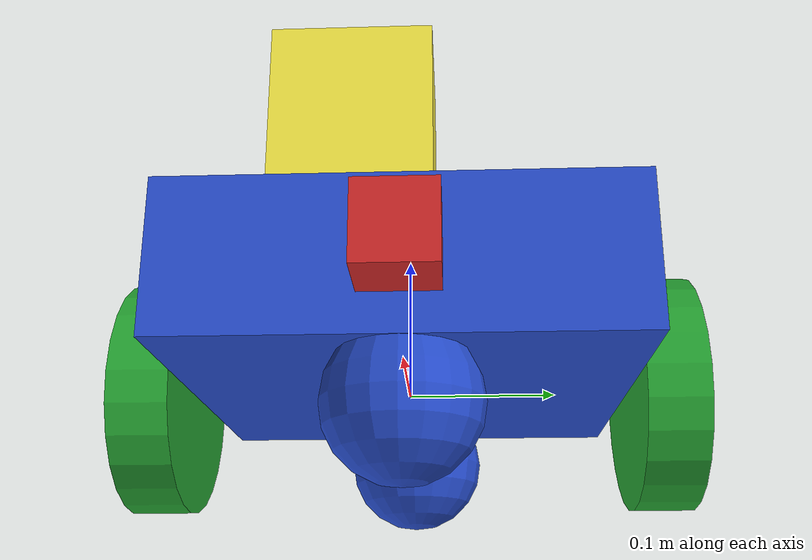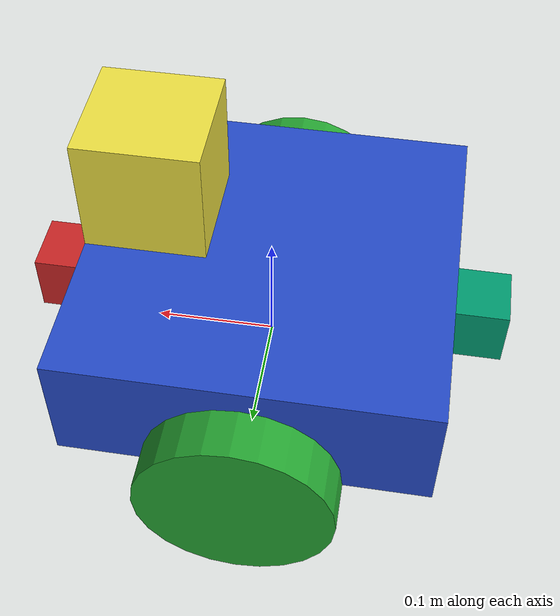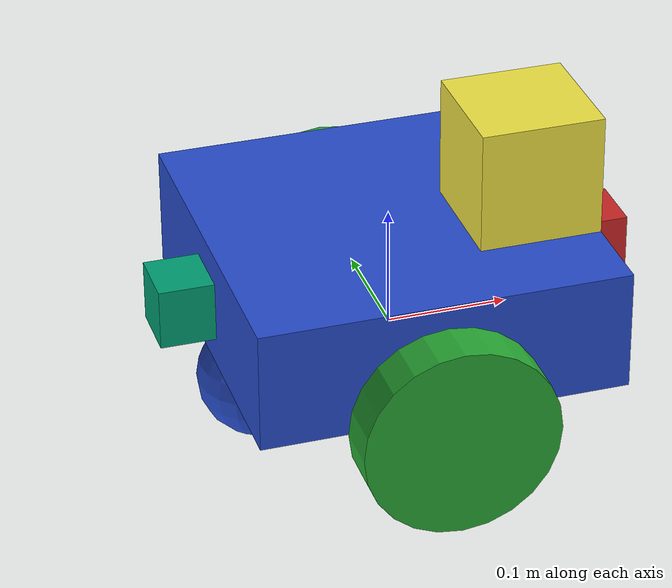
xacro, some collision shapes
<?xml version='1.0'?>

<robot name="trixy" xmlns:xacro="http://www.ros.org/wiki/xacro">

  <xacro:include filename="$(find trixy)/urdf/trixy.gazebo" />

  <gazebo reference="left_wheel">
    <material>Gazebo/Green</material>
  </gazebo>

  <gazebo reference="right_wheel">
    <material>Gazebo/Green</material>
  </gazebo>

  <gazebo reference="camera">
    <material>Gazebo/Red</material>
  </gazebo>

  <gazebo reference="chassis">
    <material>Gazebo/Blue</material>
  </gazebo>
  <link name="robot_footprint"></link>

  <joint name="robot_footprint_joint" type="fixed">
    <origin xyz="0 0 0" rpy="0 0 0" />
    <parent link="robot_footprint"/>
    <child link="chassis" />
  </joint>

  <joint name="camera_joint" type="fixed">
    <origin xyz="0.17 0 0.05" rpy="0 0 0" />
    <parent link="chassis"/>
    <child link="camera" />
    <axis xyz="0 1 0"/>
  </joint>

  <joint name="camara_trasera_joint" type="fixed">
    <origin xyz="-0.17 0 0.05" rpy="0 0 3.14" />
    <parent link="chassis"/>
    <child link="camara_trasera" />
    <axis xyz="0 1 0"/>
  </joint>

  <joint name="hokuyo_joint" type="fixed">
    <origin xyz="0.10 -0.03 0.15" rpy="0 0 0" />
    <parent link="chassis"/>
    <child link="hokuyo" />
    <axis xyz="0 1 0"/>
  </joint>

  <joint type="continuous" name="left_wheel_hinge">
    <origin xyz="0 0.17 0" rpy="0 0 0" />
    <parent link="chassis"/>
    <child link="left_wheel" />
    <axis xyz="0 1 0" rpy="0 0 0" />
    <limit effort="10000" velocity="1000" />
    <dynamics damping="1.0" friction="1.0" />
  </joint>

  <joint type="continuous" name="right_wheel_hinge">
    <origin xyz="0 -0.17 0" rpy="0 0 0" />
    <parent link="chassis"/>
    <child link="right_wheel" />
    <axis xyz="0 1 0" rpy="0 0 0" />
    <limit effort="10000" velocity="1000" />
    <dynamics damping="1.0" friction="1.0" />
  </joint>

<link name="camera">
    <inertial>
      <mass value="0.1"/>
      <origin xyz="0 0 0" rpy="0 0 0"/>
      <inertia
        ixx="1e-6" ixy="0.0" ixz="0.0"
        iyy="1e-6" iyz="0.0"
        izz="1e-6"
      />
    </inertial>

    <collision>
      <origin xyz="0 0 0" rpy="0 0 0"/>
      <geometry>
        <box size="0.05 0.05 0.05"/>
      </geometry>
    </collision>

    <visual>
      <origin xyz="0 0 0" rpy="0 0 0"/>
      <geometry>
        <box size="0.05 0.05 0.05"/>
      </geometry>
    </visual>

  </link>

  <link name="camara_trasera">
    <inertial>
      <mass value="0.1"/>
      <origin xyz="0 0 0" rpy="0 0 0"/>
      <inertia
        ixx="1e-6" ixy="0.0" ixz="0.0"
        iyy="1e-6" iyz="0.0"
        izz="1e-6"
      />
    </inertial>

    <collision>
      <origin xyz="0 0 0" rpy="0 0 0"/>
      <geometry>
        <box size="0.05 0.05 0.05"/>
      </geometry>
    </collision>

    <visual>
      <origin xyz="0 0 0" rpy="0 0 0"/>
      <geometry>
        <box size="0.05 0.05 0.05"/>
      </geometry>
    </visual>

  </link>

  <link name="hokuyo">
    <inertial>
      <mass value="1e-5"/>
      <origin xyz="0 0 0" rpy="0 0 0"/>
      <inertia
        ixx="1e-6" ixy="0.0" ixz="0.0"
        iyy="1e-6" iyz="0.0"
        izz="1e-6"
      />
    </inertial>

    <collision>
      <origin xyz="0 0 0" rpy="0 0 0"/>
      <geometry>
        <box size="0.1 0.1 0.1"/>
      </geometry>
    </collision>

    <visual>
      <origin xyz="0 0 0" rpy="0 0 0"/>
      <geometry>
        <mesh filename="package://trixy/meshes/hokuyo.dae"/>
      </geometry>
    </visual>

  </link>

  <link name="left_wheel">
    <inertial>
      <mass value="5"/>
      <origin xyz="0 0 0" rpy="0 1.5707 1.5707"/>
      <inertia
        ixx="0.1" ixy="0.0" ixz="0.0"
        iyy="0.1" iyz="0.0"
        izz="0.1"
      />
    </inertial>

    <collision>
      <origin xyz="0 0 0" rpy="0 1.5707 1.5707"/>
      <geometry>
        <cylinder radius="0.08" length="0.04"/>
      </geometry>
    </collision>

    <visual>
      <origin xyz="0 0 0" rpy="0 1.5707 1.5707"/>
      <geometry>
        <cylinder radius="0.08" length="0.04"/>
      </geometry>
    </visual>

  </link>

  <link name="right_wheel">
    <inertial>
      <mass value="5"/>
      <origin xyz="0 0 0" rpy="0 1.5707 1.5707"/>
      <inertia
        ixx="0.1" ixy="0.0" ixz="0.0"
        iyy="0.1" iyz="0.0"
        izz="0.1"
      />
    </inertial>

    <collision>
      <origin xyz="0 0 0" rpy="0 1.5707 1.5707"/>
      <geometry>
        <cylinder radius="0.08" length="0.04"/>
      </geometry>
    </collision>

    <visual>
      <origin xyz="0 0 0" rpy="0 1.5707 1.5707"/>
      <geometry>
        <cylinder radius="0.08" length="0.04"/>
      </geometry>
    </visual>

  </link>

  <link name='chassis'>
    <pose>0 0 0.1 0 0 0</pose>

    <inertial>
      <mass value="25.0"/>
      <origin xyz="0.0 0 0" rpy=" 0 0 0"/>
      <inertia
          ixx="0.1" ixy="0" ixz="0"
          iyy="0.1" iyz="0"
          izz="0.1"
      />
    </inertial>

    <collision name='chassis_collision'>
      <origin xyz="0 0 0.05" rpy=" 0 0 0"/>
      <geometry>
        <box size="0.3 0.3 0.1"/>
      </geometry>
    </collision>

    <visual name='chassis_visual'>
      <origin xyz="0 0 0.05" rpy=" 0 0 0"/>
      <geometry>
        <box size="0.3 0.3 0.1"/>
      </geometry>
    </visual>

    <collision name='back_caster_collision'>
      <origin xyz="-0.11 0 -0.03" rpy=" 0 0 0"/>
      <geometry>
        <sphere radius="0.0499"/>
      </geometry>
    </collision>

    <visual name='back_caster_visual'>
      <origin xyz="-0.11 0 -0.03" rpy=" 0 0 0"/>
      <geometry>
        <sphere radius="0.05"/>
      </geometry>
    </visual>

    <collision name='front_caster_collision'>
      <origin xyz="0.11 0 -0.03" rpy=" 0 0 0"/>
      <geometry>
        <sphere radius="0.0499"/>
      </geometry>
    </collision>

    <visual name='front_caster_visual'>
      <origin xyz="0.11 0 -0.03" rpy=" 0 0 0"/>
      <geometry>
        <sphere radius="0.05"/>
      </geometry>
    </visual>

  </link>

</robot>
